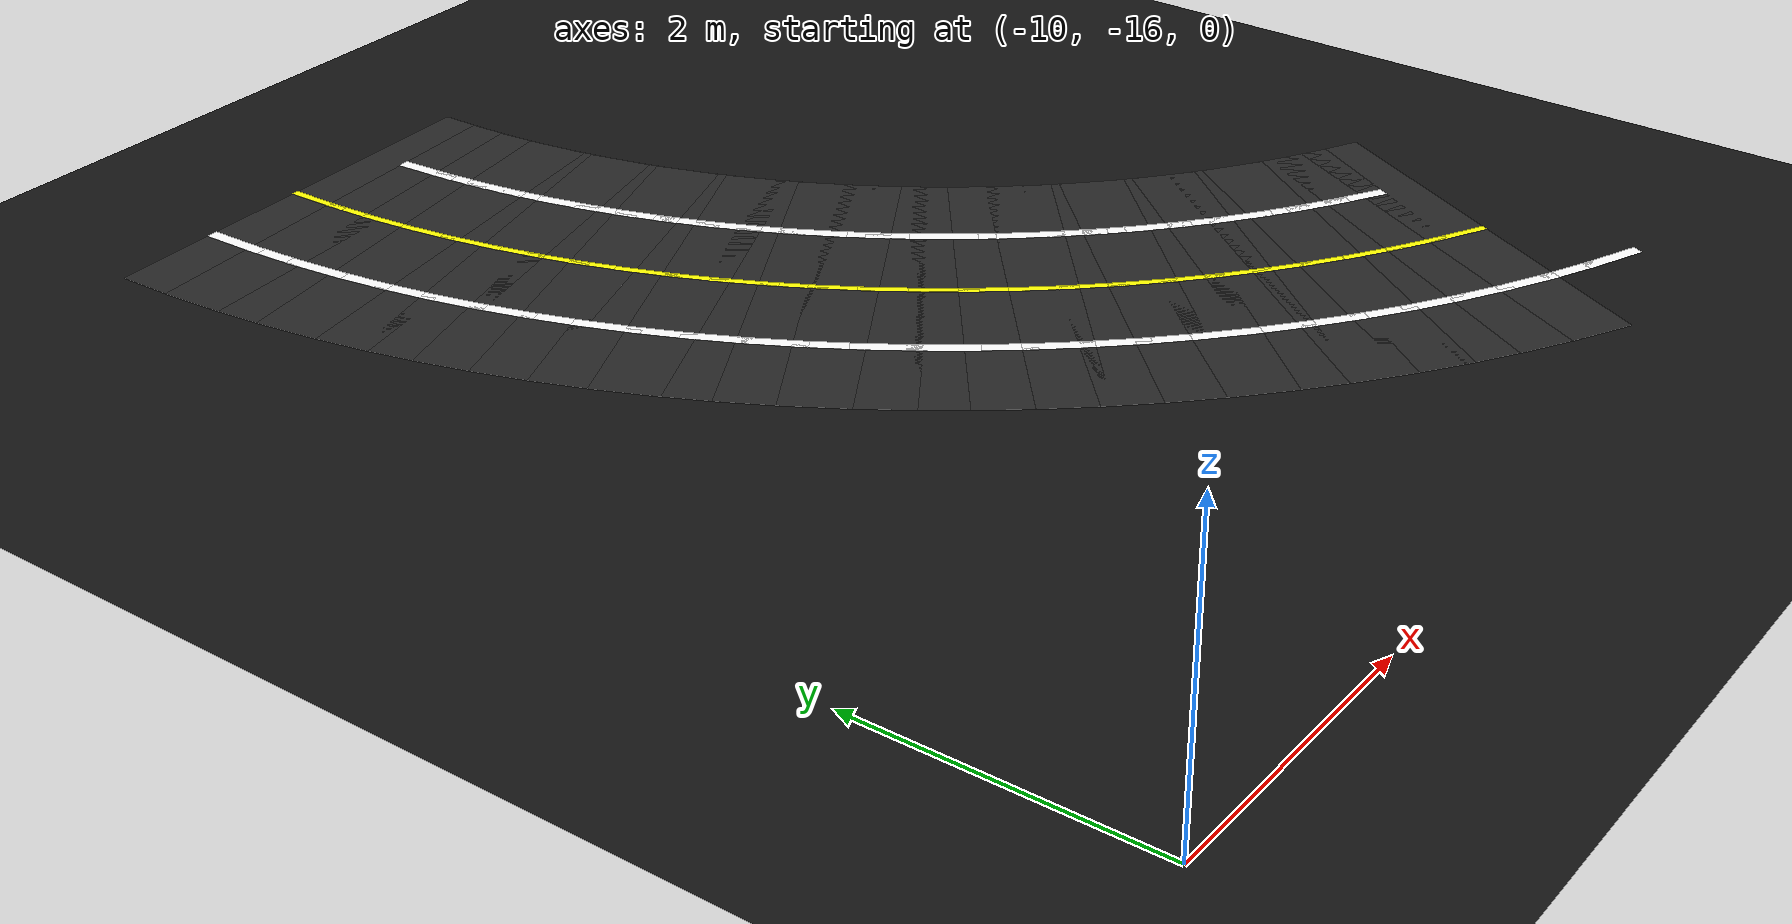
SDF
<sdf version="1.6">
 <world name="figure8_world">
  <model name="ground_plane">
   <static>true</static>
   <link name="link">
    <collision name="collision">
     <geometry><plane><normal>0 0 1</normal><size>100 100</size></plane></geometry>
    </collision>
    <visual name="visual">
     <geometry><plane><normal>0 0 1</normal><size>100 100</size></plane></geometry>
     <material><ambient>0.08 0.08 0.08 1</ambient><diffuse>0.08 0.08 0.08 1</diffuse></material>
    </visual>
   </link>
  </model>
  <model name="seg_00865">
   <static>true</static>
   <pose>-3.2173 -15.0968 0.0030 0 0 2.7410</pose>
   <link name="link">
    <collision name="collision"><geometry><box><size>0.4500 0.0800 0.002</size></box></geometry></collision>
    <visual name="visual">
     <geometry><box><size>0.4500 0.0800 0.002</size></box></geometry>
     <material><ambient>1 1 1 1</ambient><diffuse>1 1 1 1</diffuse></material>
    </visual>
   </link>
  </model>
  <model name="seg_00869">
   <static>true</static>
   <pose>-3.5347 -14.9544 0.0030 0 0 2.6988</pose>
   <link name="link">
    <collision name="collision"><geometry><box><size>0.4500 0.0800 0.002</size></box></geometry></collision>
    <visual name="visual">
     <geometry><box><size>0.4500 0.0800 0.002</size></box></geometry>
     <material><ambient>1 1 1 1</ambient><diffuse>1 1 1 1</diffuse></material>
    </visual>
   </link>
  </model>
  <model name="seg_00872">
   <static>true</static>
   <pose>-3.4962 -14.1353 0.0010 0 0 2.6566</pose>
   <link name="link">
    <collision name="collision"><geometry><box><size>0.4500 3.0000 0.002</size></box></geometry></collision>
    <visual name="visual">
     <geometry><box><size>0.4500 3.0000 0.002</size></box></geometry>
     <material><ambient>0.15 0.15 0.15 1</ambient><diffuse>0.15 0.15 0.15 1</diffuse></material>
    </visual>
   </link>
  </model>
  <model name="seg_00873">
   <static>true</static>
   <pose>-3.8458 -14.7988 0.0030 0 0 2.6566</pose>
   <link name="link">
    <collision name="collision"><geometry><box><size>0.4500 0.0800 0.002</size></box></geometry></collision>
    <visual name="visual">
     <geometry><box><size>0.4500 0.0800 0.002</size></box></geometry>
     <material><ambient>1 1 1 1</ambient><diffuse>1 1 1 1</diffuse></material>
    </visual>
   </link>
  </model>
  <model name="seg_00875">
   <static>true</static>
   <pose>-3.4962 -14.1353 0.0030 0 0 2.6566</pose>
   <link name="link">
    <collision name="collision"><geometry><box><size>0.4500 0.0500 0.002</size></box></geometry></collision>
    <visual name="visual">
     <geometry><box><size>0.4500 0.0500 0.002</size></box></geometry>
     <material><ambient>1 1 0 1</ambient><diffuse>1 1 0 1</diffuse></material>
    </visual>
   </link>
  </model>
  <model name="seg_00876">
   <static>true</static>
   <pose>-3.7728 -13.9820 0.0010 0 0 2.6145</pose>
   <link name="link">
    <collision name="collision"><geometry><box><size>0.4500 3.0000 0.002</size></box></geometry></collision>
    <visual name="visual">
     <geometry><box><size>0.4500 3.0000 0.002</size></box></geometry>
     <material><ambient>0.15 0.15 0.15 1</ambient><diffuse>0.15 0.15 0.15 1</diffuse></material>
    </visual>
   </link>
  </model>
  <model name="seg_00877">
   <static>true</static>
   <pose>-4.1501 -14.6302 0.0030 0 0 2.6145</pose>
   <link name="link">
    <collision name="collision"><geometry><box><size>0.4500 0.0800 0.002</size></box></geometry></collision>
    <visual name="visual">
     <geometry><box><size>0.4500 0.0800 0.002</size></box></geometry>
     <material><ambient>1 1 1 1</ambient><diffuse>1 1 1 1</diffuse></material>
    </visual>
   </link>
  </model>
  <model name="seg_00878">
   <static>true</static>
   <pose>-3.3955 -13.3338 0.0030 0 0 2.6145</pose>
   <link name="link">
    <collision name="collision"><geometry><box><size>0.4500 0.0800 0.002</size></box></geometry></collision>
    <visual name="visual">
     <geometry><box><size>0.4500 0.0800 0.002</size></box></geometry>
     <material><ambient>1 1 1 1</ambient><diffuse>1 1 1 1</diffuse></material>
    </visual>
   </link>
  </model>
  <model name="seg_00879">
   <static>true</static>
   <pose>-3.7728 -13.9820 0.0030 0 0 2.6145</pose>
   <link name="link">
    <collision name="collision"><geometry><box><size>0.4500 0.0500 0.002</size></box></geometry></collision>
    <visual name="visual">
     <geometry><box><size>0.4500 0.0500 0.002</size></box></geometry>
     <material><ambient>1 1 0 1</ambient><diffuse>1 1 0 1</diffuse></material>
    </visual>
   </link>
  </model>
  <model name="seg_00880">
   <static>true</static>
   <pose>-4.0427 -13.8172 0.0010 0 0 2.5723</pose>
   <link name="link">
    <collision name="collision"><geometry><box><size>0.4500 3.0000 0.002</size></box></geometry></collision>
    <visual name="visual">
     <geometry><box><size>0.4500 3.0000 0.002</size></box></geometry>
     <material><ambient>0.15 0.15 0.15 1</ambient><diffuse>0.15 0.15 0.15 1</diffuse></material>
    </visual>
   </link>
  </model>
  <model name="seg_00881">
   <static>true</static>
   <pose>-4.4470 -14.4489 0.0030 0 0 2.5723</pose>
   <link name="link">
    <collision name="collision"><geometry><box><size>0.4500 0.0800 0.002</size></box></geometry></collision>
    <visual name="visual">
     <geometry><box><size>0.4500 0.0800 0.002</size></box></geometry>
     <material><ambient>1 1 1 1</ambient><diffuse>1 1 1 1</diffuse></material>
    </visual>
   </link>
  </model>
  <model name="seg_00882">
   <static>true</static>
   <pose>-3.6384 -13.1854 0.0030 0 0 2.5723</pose>
   <link name="link">
    <collision name="collision"><geometry><box><size>0.4500 0.0800 0.002</size></box></geometry></collision>
    <visual name="visual">
     <geometry><box><size>0.4500 0.0800 0.002</size></box></geometry>
     <material><ambient>1 1 1 1</ambient><diffuse>1 1 1 1</diffuse></material>
    </visual>
   </link>
  </model>
  <model name="seg_00883">
   <static>true</static>
   <pose>-4.0427 -13.8172 0.0030 0 0 2.5723</pose>
   <link name="link">
    <collision name="collision"><geometry><box><size>0.4500 0.0500 0.002</size></box></geometry></collision>
    <visual name="visual">
     <geometry><box><size>0.4500 0.0500 0.002</size></box></geometry>
     <material><ambient>1 1 0 1</ambient><diffuse>1 1 0 1</diffuse></material>
    </visual>
   </link>
  </model>
  <model name="seg_00884">
   <static>true</static>
   <pose>-4.3054 -13.6411 0.0010 0 0 2.5301</pose>
   <link name="link">
    <collision name="collision"><geometry><box><size>0.4500 3.0000 0.002</size></box></geometry></collision>
    <visual name="visual">
     <geometry><box><size>0.4500 3.0000 0.002</size></box></geometry>
     <material><ambient>0.15 0.15 0.15 1</ambient><diffuse>0.15 0.15 0.15 1</diffuse></material>
    </visual>
   </link>
  </model>
  <model name="seg_00885">
   <static>true</static>
   <pose>-4.7360 -14.2552 0.0030 0 0 2.5301</pose>
   <link name="link">
    <collision name="collision"><geometry><box><size>0.4500 0.0800 0.002</size></box></geometry></collision>
    <visual name="visual">
     <geometry><box><size>0.4500 0.0800 0.002</size></box></geometry>
     <material><ambient>1 1 1 1</ambient><diffuse>1 1 1 1</diffuse></material>
    </visual>
   </link>
  </model>
  <model name="seg_00886">
   <static>true</static>
   <pose>-3.8749 -13.0270 0.0030 0 0 2.5301</pose>
   <link name="link">
    <collision name="collision"><geometry><box><size>0.4500 0.0800 0.002</size></box></geometry></collision>
    <visual name="visual">
     <geometry><box><size>0.4500 0.0800 0.002</size></box></geometry>
     <material><ambient>1 1 1 1</ambient><diffuse>1 1 1 1</diffuse></material>
    </visual>
   </link>
  </model>
  <model name="seg_00887">
   <static>true</static>
   <pose>-4.3054 -13.6411 0.0030 0 0 2.5301</pose>
   <link name="link">
    <collision name="collision"><geometry><box><size>0.4500 0.0500 0.002</size></box></geometry></collision>
    <visual name="visual">
     <geometry><box><size>0.4500 0.0500 0.002</size></box></geometry>
     <material><ambient>1 1 0 1</ambient><diffuse>1 1 0 1</diffuse></material>
    </visual>
   </link>
  </model>
  <model name="seg_00888">
   <static>true</static>
   <pose>-4.5605 -13.4542 0.0010 0 0 2.4880</pose>
   <link name="link">
    <collision name="collision"><geometry><box><size>0.4500 3.0000 0.002</size></box></geometry></collision>
    <visual name="visual">
     <geometry><box><size>0.4500 3.0000 0.002</size></box></geometry>
     <material><ambient>0.15 0.15 0.15 1</ambient><diffuse>0.15 0.15 0.15 1</diffuse></material>
    </visual>
   </link>
  </model>
  <model name="seg_00889">
   <static>true</static>
   <pose>-5.0165 -14.0496 0.0030 0 0 2.4880</pose>
   <link name="link">
    <collision name="collision"><geometry><box><size>0.4500 0.0800 0.002</size></box></geometry></collision>
    <visual name="visual">
     <geometry><box><size>0.4500 0.0800 0.002</size></box></geometry>
     <material><ambient>1 1 1 1</ambient><diffuse>1 1 1 1</diffuse></material>
    </visual>
   </link>
  </model>
  <model name="seg_00890">
   <static>true</static>
   <pose>-4.1044 -12.8587 0.0030 0 0 2.4880</pose>
   <link name="link">
    <collision name="collision"><geometry><box><size>0.4500 0.0800 0.002</size></box></geometry></collision>
    <visual name="visual">
     <geometry><box><size>0.4500 0.0800 0.002</size></box></geometry>
     <material><ambient>1 1 1 1</ambient><diffuse>1 1 1 1</diffuse></material>
    </visual>
   </link>
  </model>
  <model name="seg_00891">
   <static>true</static>
   <pose>-4.5605 -13.4542 0.0030 0 0 2.4880</pose>
   <link name="link">
    <collision name="collision"><geometry><box><size>0.4500 0.0500 0.002</size></box></geometry></collision>
    <visual name="visual">
     <geometry><box><size>0.4500 0.0500 0.002</size></box></geometry>
     <material><ambient>1 1 0 1</ambient><diffuse>1 1 0 1</diffuse></material>
    </visual>
   </link>
  </model>
  <model name="seg_00892">
   <static>true</static>
   <pose>-4.8074 -13.2566 0.0010 0 0 2.4458</pose>
   <link name="link">
    <collision name="collision"><geometry><box><size>0.4500 3.0000 0.002</size></box></geometry></collision>
    <visual name="visual">
     <geometry><box><size>0.4500 3.0000 0.002</size></box></geometry>
     <material><ambient>0.15 0.15 0.15 1</ambient><diffuse>0.15 0.15 0.15 1</diffuse></material>
    </visual>
   </link>
  </model>
  <model name="seg_00893">
   <static>true</static>
   <pose>-5.2882 -13.8323 0.0030 0 0 2.4458</pose>
   <link name="link">
    <collision name="collision"><geometry><box><size>0.4500 0.0800 0.002</size></box></geometry></collision>
    <visual name="visual">
     <geometry><box><size>0.4500 0.0800 0.002</size></box></geometry>
     <material><ambient>1 1 1 1</ambient><diffuse>1 1 1 1</diffuse></material>
    </visual>
   </link>
  </model>
  <model name="seg_00894">
   <static>true</static>
   <pose>-4.3267 -12.6810 0.0030 0 0 2.4458</pose>
   <link name="link">
    <collision name="collision"><geometry><box><size>0.4500 0.0800 0.002</size></box></geometry></collision>
    <visual name="visual">
     <geometry><box><size>0.4500 0.0800 0.002</size></box></geometry>
     <material><ambient>1 1 1 1</ambient><diffuse>1 1 1 1</diffuse></material>
    </visual>
   </link>
  </model>
  <model name="seg_00895">
   <static>true</static>
   <pose>-4.8074 -13.2566 0.0030 0 0 2.4458</pose>
   <link name="link">
    <collision name="collision"><geometry><box><size>0.4500 0.0500 0.002</size></box></geometry></collision>
    <visual name="visual">
     <geometry><box><size>0.4500 0.0500 0.002</size></box></geometry>
     <material><ambient>1 1 0 1</ambient><diffuse>1 1 0 1</diffuse></material>
    </visual>
   </link>
  </model>
  <model name="seg_00896">
   <static>true</static>
   <pose>-5.0458 -13.0488 0.0010 0 0 2.4036</pose>
   <link name="link">
    <collision name="collision"><geometry><box><size>0.4500 3.0000 0.002</size></box></geometry></collision>
    <visual name="visual">
     <geometry><box><size>0.4500 3.0000 0.002</size></box></geometry>
     <material><ambient>0.15 0.15 0.15 1</ambient><diffuse>0.15 0.15 0.15 1</diffuse></material>
    </visual>
   </link>
  </model>
  <model name="seg_00897">
   <static>true</static>
   <pose>-5.5504 -13.6037 0.0030 0 0 2.4036</pose>
   <link name="link">
    <collision name="collision"><geometry><box><size>0.4500 0.0800 0.002</size></box></geometry></collision>
    <visual name="visual">
     <geometry><box><size>0.4500 0.0800 0.002</size></box></geometry>
     <material><ambient>1 1 1 1</ambient><diffuse>1 1 1 1</diffuse></material>
    </visual>
   </link>
  </model>
  <model name="seg_00898">
   <static>true</static>
   <pose>-4.5413 -12.4939 0.0030 0 0 2.4036</pose>
   <link name="link">
    <collision name="collision"><geometry><box><size>0.4500 0.0800 0.002</size></box></geometry></collision>
    <visual name="visual">
     <geometry><box><size>0.4500 0.0800 0.002</size></box></geometry>
     <material><ambient>1 1 1 1</ambient><diffuse>1 1 1 1</diffuse></material>
    </visual>
   </link>
  </model>
  <model name="seg_00899">
   <static>true</static>
   <pose>-5.0458 -13.0488 0.0030 0 0 2.4036</pose>
   <link name="link">
    <collision name="collision"><geometry><box><size>0.4500 0.0500 0.002</size></box></geometry></collision>
    <visual name="visual">
     <geometry><box><size>0.4500 0.0500 0.002</size></box></geometry>
     <material><ambient>1 1 0 1</ambient><diffuse>1 1 0 1</diffuse></material>
    </visual>
   </link>
  </model>
  <model name="seg_00900">
   <static>true</static>
   <pose>-5.2753 -12.8312 0.0010 0 0 2.3615</pose>
   <link name="link">
    <collision name="collision"><geometry><box><size>0.4500 3.0000 0.002</size></box></geometry></collision>
    <visual name="visual">
     <geometry><box><size>0.4500 3.0000 0.002</size></box></geometry>
     <material><ambient>0.15 0.15 0.15 1</ambient><diffuse>0.15 0.15 0.15 1</diffuse></material>
    </visual>
   </link>
  </model>
  <model name="seg_00901">
   <static>true</static>
   <pose>-5.8028 -13.3643 0.0030 0 0 2.3615</pose>
   <link name="link">
    <collision name="collision"><geometry><box><size>0.4500 0.0800 0.002</size></box></geometry></collision>
    <visual name="visual">
     <geometry><box><size>0.4500 0.0800 0.002</size></box></geometry>
     <material><ambient>1 1 1 1</ambient><diffuse>1 1 1 1</diffuse></material>
    </visual>
   </link>
  </model>
  <model name="seg_00902">
   <static>true</static>
   <pose>-4.7477 -12.2981 0.0030 0 0 2.3615</pose>
   <link name="link">
    <collision name="collision"><geometry><box><size>0.4500 0.0800 0.002</size></box></geometry></collision>
    <visual name="visual">
     <geometry><box><size>0.4500 0.0800 0.002</size></box></geometry>
     <material><ambient>1 1 1 1</ambient><diffuse>1 1 1 1</diffuse></material>
    </visual>
   </link>
  </model>
  <model name="seg_00903">
   <static>true</static>
   <pose>-5.2753 -12.8312 0.0030 0 0 2.3615</pose>
   <link name="link">
    <collision name="collision"><geometry><box><size>0.4500 0.0500 0.002</size></box></geometry></collision>
    <visual name="visual">
     <geometry><box><size>0.4500 0.0500 0.002</size></box></geometry>
     <material><ambient>1 1 0 1</ambient><diffuse>1 1 0 1</diffuse></material>
    </visual>
   </link>
  </model>
  <model name="seg_00904">
   <static>true</static>
   <pose>-5.4953 -12.6041 0.0010 0 0 2.3193</pose>
   <link name="link">
    <collision name="collision"><geometry><box><size>0.4500 3.0000 0.002</size></box></geometry></collision>
    <visual name="visual">
     <geometry><box><size>0.4500 3.0000 0.002</size></box></geometry>
     <material><ambient>0.15 0.15 0.15 1</ambient><diffuse>0.15 0.15 0.15 1</diffuse></material>
    </visual>
   </link>
  </model>
  <model name="seg_00905">
   <static>true</static>
   <pose>-6.0449 -13.1145 0.0030 0 0 2.3193</pose>
   <link name="link">
    <collision name="collision"><geometry><box><size>0.4500 0.0800 0.002</size></box></geometry></collision>
    <visual name="visual">
     <geometry><box><size>0.4500 0.0800 0.002</size></box></geometry>
     <material><ambient>1 1 1 1</ambient><diffuse>1 1 1 1</diffuse></material>
    </visual>
   </link>
  </model>
  <model name="seg_00906">
   <static>true</static>
   <pose>-4.9458 -12.0936 0.0030 0 0 2.3193</pose>
   <link name="link">
    <collision name="collision"><geometry><box><size>0.4500 0.0800 0.002</size></box></geometry></collision>
    <visual name="visual">
     <geometry><box><size>0.4500 0.0800 0.002</size></box></geometry>
     <material><ambient>1 1 1 1</ambient><diffuse>1 1 1 1</diffuse></material>
    </visual>
   </link>
  </model>
  <model name="seg_00907">
   <static>true</static>
   <pose>-5.4953 -12.6041 0.0030 0 0 2.3193</pose>
   <link name="link">
    <collision name="collision"><geometry><box><size>0.4500 0.0500 0.002</size></box></geometry></collision>
    <visual name="visual">
     <geometry><box><size>0.4500 0.0500 0.002</size></box></geometry>
     <material><ambient>1 1 0 1</ambient><diffuse>1 1 0 1</diffuse></material>
    </visual>
   </link>
  </model>
  <model name="seg_00908">
   <static>true</static>
   <pose>-5.7056 -12.3679 0.0010 0 0 2.2771</pose>
   <link name="link">
    <collision name="collision"><geometry><box><size>0.4500 3.0000 0.002</size></box></geometry></collision>
    <visual name="visual">
     <geometry><box><size>0.4500 3.0000 0.002</size></box></geometry>
     <material><ambient>0.15 0.15 0.15 1</ambient><diffuse>0.15 0.15 0.15 1</diffuse></material>
    </visual>
   </link>
  </model>
  <model name="seg_00909">
   <static>true</static>
   <pose>-6.2762 -12.8546 0.0030 0 0 2.2771</pose>
   <link name="link">
    <collision name="collision"><geometry><box><size>0.4500 0.0800 0.002</size></box></geometry></collision>
    <visual name="visual">
     <geometry><box><size>0.4500 0.0800 0.002</size></box></geometry>
     <material><ambient>1 1 1 1</ambient><diffuse>1 1 1 1</diffuse></material>
    </visual>
   </link>
  </model>
  <model name="seg_00910">
   <static>true</static>
   <pose>-5.1351 -11.8811 0.0030 0 0 2.2771</pose>
   <link name="link">
    <collision name="collision"><geometry><box><size>0.4500 0.0800 0.002</size></box></geometry></collision>
    <visual name="visual">
     <geometry><box><size>0.4500 0.0800 0.002</size></box></geometry>
     <material><ambient>1 1 1 1</ambient><diffuse>1 1 1 1</diffuse></material>
    </visual>
   </link>
  </model>
  <model name="seg_00911">
   <static>true</static>
   <pose>-5.7056 -12.3679 0.0030 0 0 2.2771</pose>
   <link name="link">
    <collision name="collision"><geometry><box><size>0.4500 0.0500 0.002</size></box></geometry></collision>
    <visual name="visual">
     <geometry><box><size>0.4500 0.0500 0.002</size></box></geometry>
     <material><ambient>1 1 0 1</ambient><diffuse>1 1 0 1</diffuse></material>
    </visual>
   </link>
  </model>
  <model name="seg_00912">
   <static>true</static>
   <pose>-5.9058 -12.1230 0.0010 0 0 2.2350</pose>
   <link name="link">
    <collision name="collision"><geometry><box><size>0.4500 3.0000 0.002</size></box></geometry></collision>
    <visual name="visual">
     <geometry><box><size>0.4500 3.0000 0.002</size></box></geometry>
     <material><ambient>0.15 0.15 0.15 1</ambient><diffuse>0.15 0.15 0.15 1</diffuse></material>
    </visual>
   </link>
  </model>
  <model name="seg_00913">
   <static>true</static>
   <pose>-6.4963 -12.5853 0.0030 0 0 2.2350</pose>
   <link name="link">
    <collision name="collision"><geometry><box><size>0.4500 0.0800 0.002</size></box></geometry></collision>
    <visual name="visual">
     <geometry><box><size>0.4500 0.0800 0.002</size></box></geometry>
     <material><ambient>1 1 1 1</ambient><diffuse>1 1 1 1</diffuse></material>
    </visual>
   </link>
  </model>
  <model name="seg_00914">
   <static>true</static>
   <pose>-5.3152 -11.6607 0.0030 0 0 2.2350</pose>
   <link name="link">
    <collision name="collision"><geometry><box><size>0.4500 0.0800 0.002</size></box></geometry></collision>
    <visual name="visual">
     <geometry><box><size>0.4500 0.0800 0.002</size></box></geometry>
     <material><ambient>1 1 1 1</ambient><diffuse>1 1 1 1</diffuse></material>
    </visual>
   </link>
  </model>
  <model name="seg_00915">
   <static>true</static>
   <pose>-5.9058 -12.1230 0.0030 0 0 2.2350</pose>
   <link name="link">
    <collision name="collision"><geometry><box><size>0.4500 0.0500 0.002</size></box></geometry></collision>
    <visual name="visual">
     <geometry><box><size>0.4500 0.0500 0.002</size></box></geometry>
     <material><ambient>1 1 0 1</ambient><diffuse>1 1 0 1</diffuse></material>
    </visual>
   </link>
  </model>
  <model name="seg_00916">
   <static>true</static>
   <pose>-6.0954 -11.8699 0.0010 0 0 2.1928</pose>
   <link name="link">
    <collision name="collision"><geometry><box><size>0.4500 3.0000 0.002</size></box></geometry></collision>
    <visual name="visual">
     <geometry><box><size>0.4500 3.0000 0.002</size></box></geometry>
     <material><ambient>0.15 0.15 0.15 1</ambient><diffuse>0.15 0.15 0.15 1</diffuse></material>
    </visual>
   </link>
  </model>
  <model name="seg_00917">
   <static>true</static>
   <pose>-6.7049 -12.3069 0.0030 0 0 2.1928</pose>
   <link name="link">
    <collision name="collision"><geometry><box><size>0.4500 0.0800 0.002</size></box></geometry></collision>
    <visual name="visual">
     <geometry><box><size>0.4500 0.0800 0.002</size></box></geometry>
     <material><ambient>1 1 1 1</ambient><diffuse>1 1 1 1</diffuse></material>
    </visual>
   </link>
  </model>
  <model name="seg_00918">
   <static>true</static>
   <pose>-5.4859 -11.4329 0.0030 0 0 2.1928</pose>
   <link name="link">
    <collision name="collision"><geometry><box><size>0.4500 0.0800 0.002</size></box></geometry></collision>
    <visual name="visual">
     <geometry><box><size>0.4500 0.0800 0.002</size></box></geometry>
     <material><ambient>1 1 1 1</ambient><diffuse>1 1 1 1</diffuse></material>
    </visual>
   </link>
  </model>
  <model name="seg_00919">
   <static>true</static>
   <pose>-6.0954 -11.8699 0.0030 0 0 2.1928</pose>
   <link name="link">
    <collision name="collision"><geometry><box><size>0.4500 0.0500 0.002</size></box></geometry></collision>
    <visual name="visual">
     <geometry><box><size>0.4500 0.0500 0.002</size></box></geometry>
     <material><ambient>1 1 0 1</ambient><diffuse>1 1 0 1</diffuse></material>
    </visual>
   </link>
  </model>
  <model name="seg_00920">
   <static>true</static>
   <pose>-6.2742 -11.6091 0.0010 0 0 2.1506</pose>
   <link name="link">
    <collision name="collision"><geometry><box><size>0.4500 3.0000 0.002</size></box></geometry></collision>
    <visual name="visual">
     <geometry><box><size>0.4500 3.0000 0.002</size></box></geometry>
     <material><ambient>0.15 0.15 0.15 1</ambient><diffuse>0.15 0.15 0.15 1</diffuse></material>
    </visual>
   </link>
  </model>
  <model name="seg_00921">
   <static>true</static>
   <pose>-6.9016 -12.0200 0.0030 0 0 2.1506</pose>
   <link name="link">
    <collision name="collision"><geometry><box><size>0.4500 0.0800 0.002</size></box></geometry></collision>
    <visual name="visual">
     <geometry><box><size>0.4500 0.0800 0.002</size></box></geometry>
     <material><ambient>1 1 1 1</ambient><diffuse>1 1 1 1</diffuse></material>
    </visual>
   </link>
  </model>
  <model name="seg_00922">
   <static>true</static>
   <pose>-5.6468 -11.1982 0.0030 0 0 2.1506</pose>
   <link name="link">
    <collision name="collision"><geometry><box><size>0.4500 0.0800 0.002</size></box></geometry></collision>
    <visual name="visual">
     <geometry><box><size>0.4500 0.0800 0.002</size></box></geometry>
     <material><ambient>1 1 1 1</ambient><diffuse>1 1 1 1</diffuse></material>
    </visual>
   </link>
  </model>
  <model name="seg_00923">
   <static>true</static>
   <pose>-6.2742 -11.6091 0.0030 0 0 2.1506</pose>
   <link name="link">
    <collision name="collision"><geometry><box><size>0.4500 0.0500 0.002</size></box></geometry></collision>
    <visual name="visual">
     <geometry><box><size>0.4500 0.0500 0.002</size></box></geometry>
     <material><ambient>1 1 0 1</ambient><diffuse>1 1 0 1</diffuse></material>
    </visual>
   </link>
  </model>
  <model name="seg_00924">
   <static>true</static>
   <pose>-6.4418 -11.3409 0.0010 0 0 2.1085</pose>
   <link name="link">
    <collision name="collision"><geometry><box><size>0.4500 3.0000 0.002</size></box></geometry></collision>
    <visual name="visual">
     <geometry><box><size>0.4500 3.0000 0.002</size></box></geometry>
     <material><ambient>0.15 0.15 0.15 1</ambient><diffuse>0.15 0.15 0.15 1</diffuse></material>
    </visual>
   </link>
  </model>
  <model name="seg_00925">
   <static>true</static>
   <pose>-7.0860 -11.7250 0.0030 0 0 2.1085</pose>
   <link name="link">
    <collision name="collision"><geometry><box><size>0.4500 0.0800 0.002</size></box></geometry></collision>
    <visual name="visual">
     <geometry><box><size>0.4500 0.0800 0.002</size></box></geometry>
     <material><ambient>1 1 1 1</ambient><diffuse>1 1 1 1</diffuse></material>
    </visual>
   </link>
  </model>
  <model name="seg_00926">
   <static>true</static>
   <pose>-5.7977 -10.9568 0.0030 0 0 2.1085</pose>
   <link name="link">
    <collision name="collision"><geometry><box><size>0.4500 0.0800 0.002</size></box></geometry></collision>
    <visual name="visual">
     <geometry><box><size>0.4500 0.0800 0.002</size></box></geometry>
     <material><ambient>1 1 1 1</ambient><diffuse>1 1 1 1</diffuse></material>
    </visual>
   </link>
  </model>
  <model name="seg_00927">
   <static>true</static>
   <pose>-6.4418 -11.3409 0.0030 0 0 2.1085</pose>
   <link name="link">
    <collision name="collision"><geometry><box><size>0.4500 0.0500 0.002</size></box></geometry></collision>
    <visual name="visual">
     <geometry><box><size>0.4500 0.0500 0.002</size></box></geometry>
     <material><ambient>1 1 0 1</ambient><diffuse>1 1 0 1</diffuse></material>
    </visual>
   </link>
  </model>
  <model name="seg_00928">
   <static>true</static>
   <pose>-6.5980 -11.0659 0.0010 0 0 2.0663</pose>
   <link name="link">
    <collision name="collision"><geometry><box><size>0.4500 3.0000 0.002</size></box></geometry></collision>
    <visual name="visual">
     <geometry><box><size>0.4500 3.0000 0.002</size></box></geometry>
     <material><ambient>0.15 0.15 0.15 1</ambient><diffuse>0.15 0.15 0.15 1</diffuse></material>
    </visual>
   </link>
  </model>
  <model name="seg_00929">
   <static>true</static>
   <pose>-7.2578 -11.4225 0.0030 0 0 2.0663</pose>
   <link name="link">
    <collision name="collision"><geometry><box><size>0.4500 0.0800 0.002</size></box></geometry></collision>
    <visual name="visual">
     <geometry><box><size>0.4500 0.0800 0.002</size></box></geometry>
     <material><ambient>1 1 1 1</ambient><diffuse>1 1 1 1</diffuse></material>
    </visual>
   </link>
  </model>
  <model name="seg_00930">
   <static>true</static>
   <pose>-5.9382 -10.7094 0.0030 0 0 2.0663</pose>
   <link name="link">
    <collision name="collision"><geometry><box><size>0.4500 0.0800 0.002</size></box></geometry></collision>
    <visual name="visual">
     <geometry><box><size>0.4500 0.0800 0.002</size></box></geometry>
     <material><ambient>1 1 1 1</ambient><diffuse>1 1 1 1</diffuse></material>
    </visual>
   </link>
  </model>
  <model name="seg_00931">
   <static>true</static>
   <pose>-6.5980 -11.0659 0.0030 0 0 2.0663</pose>
   <link name="link">
    <collision name="collision"><geometry><box><size>0.4500 0.0500 0.002</size></box></geometry></collision>
    <visual name="visual">
     <geometry><box><size>0.4500 0.0500 0.002</size></box></geometry>
     <material><ambient>1 1 0 1</ambient><diffuse>1 1 0 1</diffuse></material>
    </visual>
   </link>
  </model>
  <model name="seg_00932">
   <static>true</static>
   <pose>-6.7425 -10.7846 0.0010 0 0 2.0241</pose>
   <link name="link">
    <collision name="collision"><geometry><box><size>0.4500 3.0000 0.002</size></box></geometry></collision>
    <visual name="visual">
     <geometry><box><size>0.4500 3.0000 0.002</size></box></geometry>
     <material><ambient>0.15 0.15 0.15 1</ambient><diffuse>0.15 0.15 0.15 1</diffuse></material>
    </visual>
   </link>
  </model>
  <model name="seg_00933">
   <static>true</static>
   <pose>-7.4167 -11.1131 0.0030 0 0 2.0241</pose>
   <link name="link">
    <collision name="collision"><geometry><box><size>0.4500 0.0800 0.002</size></box></geometry></collision>
    <visual name="visual">
     <geometry><box><size>0.4500 0.0800 0.002</size></box></geometry>
     <material><ambient>1 1 1 1</ambient><diffuse>1 1 1 1</diffuse></material>
    </visual>
   </link>
  </model>
  <model name="seg_00934">
   <static>true</static>
   <pose>-6.0682 -10.4562 0.0030 0 0 2.0241</pose>
   <link name="link">
    <collision name="collision"><geometry><box><size>0.4500 0.0800 0.002</size></box></geometry></collision>
    <visual name="visual">
     <geometry><box><size>0.4500 0.0800 0.002</size></box></geometry>
     <material><ambient>1 1 1 1</ambient><diffuse>1 1 1 1</diffuse></material>
    </visual>
   </link>
  </model>
  <model name="seg_00935">
   <static>true</static>
   <pose>-6.7425 -10.7846 0.0030 0 0 2.0241</pose>
   <link name="link">
    <collision name="collision"><geometry><box><size>0.4500 0.0500 0.002</size></box></geometry></collision>
    <visual name="visual">
     <geometry><box><size>0.4500 0.0500 0.002</size></box></geometry>
     <material><ambient>1 1 0 1</ambient><diffuse>1 1 0 1</diffuse></material>
    </visual>
   </link>
  </model>
  <model name="seg_00936">
   <static>true</static>
   <pose>-6.8750 -10.4975 0.0010 0 0 1.9819</pose>
   <link name="link">
    <collision name="collision"><geometry><box><size>0.4500 3.0000 0.002</size></box></geometry></collision>
    <visual name="visual">
     <geometry><box><size>0.4500 3.0000 0.002</size></box></geometry>
     <material><ambient>0.15 0.15 0.15 1</ambient><diffuse>0.15 0.15 0.15 1</diffuse></material>
    </visual>
   </link>
  </model>
  <model name="seg_00937">
   <static>true</static>
   <pose>-7.5625 -10.7972 0.0030 0 0 1.9819</pose>
   <link name="link">
    <collision name="collision"><geometry><box><size>0.4500 0.0800 0.002</size></box></geometry></collision>
    <visual name="visual">
     <geometry><box><size>0.4500 0.0800 0.002</size></box></geometry>
     <material><ambient>1 1 1 1</ambient><diffuse>1 1 1 1</diffuse></material>
    </visual>
   </link>
  </model>
  <model name="seg_00938">
   <static>true</static>
   <pose>-6.1875 -10.1977 0.0030 0 0 1.9819</pose>
   <link name="link">
    <collision name="collision"><geometry><box><size>0.4500 0.0800 0.002</size></box></geometry></collision>
    <visual name="visual">
     <geometry><box><size>0.4500 0.0800 0.002</size></box></geometry>
     <material><ambient>1 1 1 1</ambient><diffuse>1 1 1 1</diffuse></material>
    </visual>
   </link>
  </model>
  <model name="seg_00939">
   <static>true</static>
   <pose>-6.8750 -10.4975 0.0030 0 0 1.9819</pose>
   <link name="link">
    <collision name="collision"><geometry><box><size>0.4500 0.0500 0.002</size></box></geometry></collision>
    <visual name="visual">
     <geometry><box><size>0.4500 0.0500 0.002</size></box></geometry>
     <material><ambient>1 1 0 1</ambient><diffuse>1 1 0 1</diffuse></material>
    </visual>
   </link>
  </model>
  <model name="seg_00940">
   <static>true</static>
   <pose>-6.9952 -10.2050 0.0010 0 0 1.9398</pose>
   <link name="link">
    <collision name="collision"><geometry><box><size>0.4500 3.0000 0.002</size></box></geometry></collision>
    <visual name="visual">
     <geometry><box><size>0.4500 3.0000 0.002</size></box></geometry>
     <material><ambient>0.15 0.15 0.15 1</ambient><diffuse>0.15 0.15 0.15 1</diffuse></material>
    </visual>
   </link>
  </model>
  <model name="seg_00941">
   <static>true</static>
   <pose>-7.6947 -10.4755 0.0030 0 0 1.9398</pose>
   <link name="link">
    <collision name="collision"><geometry><box><size>0.4500 0.0800 0.002</size></box></geometry></collision>
    <visual name="visual">
     <geometry><box><size>0.4500 0.0800 0.002</size></box></geometry>
     <material><ambient>1 1 1 1</ambient><diffuse>1 1 1 1</diffuse></material>
    </visual>
   </link>
  </model>
  <model name="seg_00942">
   <static>true</static>
   <pose>-6.2957 -9.9345 0.0030 0 0 1.9398</pose>
   <link name="link">
    <collision name="collision"><geometry><box><size>0.4500 0.0800 0.002</size></box></geometry></collision>
    <visual name="visual">
     <geometry><box><size>0.4500 0.0800 0.002</size></box></geometry>
     <material><ambient>1 1 1 1</ambient><diffuse>1 1 1 1</diffuse></material>
    </visual>
   </link>
  </model>
  <model name="seg_00943">
   <static>true</static>
   <pose>-6.9952 -10.2050 0.0030 0 0 1.9398</pose>
   <link name="link">
    <collision name="collision"><geometry><box><size>0.4500 0.0500 0.002</size></box></geometry></collision>
    <visual name="visual">
     <geometry><box><size>0.4500 0.0500 0.002</size></box></geometry>
     <material><ambient>1 1 0 1</ambient><diffuse>1 1 0 1</diffuse></material>
    </visual>
   </link>
  </model>
  <model name="seg_00944">
   <static>true</static>
   <pose>-7.1030 -9.9077 0.0010 0 0 1.8976</pose>
   <link name="link">
    <collision name="collision"><geometry><box><size>0.4500 3.0000 0.002</size></box></geometry></collision>
    <visual name="visual">
     <geometry><box><size>0.4500 3.0000 0.002</size></box></geometry>
     <material><ambient>0.15 0.15 0.15 1</ambient><diffuse>0.15 0.15 0.15 1</diffuse></material>
    </visual>
   </link>
  </model>
  <model name="seg_00945">
   <static>true</static>
   <pose>-7.8133 -10.1484 0.0030 0 0 1.8976</pose>
   <link name="link">
    <collision name="collision"><geometry><box><size>0.4500 0.0800 0.002</size></box></geometry></collision>
    <visual name="visual">
     <geometry><box><size>0.4500 0.0800 0.002</size></box></geometry>
     <material><ambient>1 1 1 1</ambient><diffuse>1 1 1 1</diffuse></material>
    </visual>
   </link>
  </model>
  <model name="seg_00946">
   <static>true</static>
   <pose>-6.3927 -9.6669 0.0030 0 0 1.8976</pose>
   <link name="link">
    <collision name="collision"><geometry><box><size>0.4500 0.0800 0.002</size></box></geometry></collision>
    <visual name="visual">
     <geometry><box><size>0.4500 0.0800 0.002</size></box></geometry>
     <material><ambient>1 1 1 1</ambient><diffuse>1 1 1 1</diffuse></material>
    </visual>
   </link>
  </model>
  <model name="seg_00947">
   <static>true</static>
   <pose>-7.1030 -9.9077 0.0030 0 0 1.8976</pose>
   <link name="link">
    <collision name="collision"><geometry><box><size>0.4500 0.0500 0.002</size></box></geometry></collision>
    <visual name="visual">
     <geometry><box><size>0.4500 0.0500 0.002</size></box></geometry>
     <material><ambient>1 1 0 1</ambient><diffuse>1 1 0 1</diffuse></material>
    </visual>
   </link>
  </model>
  <model name="seg_00948">
   <static>true</static>
   <pose>-7.1982 -9.6061 0.0010 0 0 1.8554</pose>
   <link name="link">
    <collision name="collision"><geometry><box><size>0.4500 3.0000 0.002</size></box></geometry></collision>
    <visual name="visual">
     <geometry><box><size>0.4500 3.0000 0.002</size></box></geometry>
     <material><ambient>0.15 0.15 0.15 1</ambient><diffuse>0.15 0.15 0.15 1</diffuse></material>
    </visual>
   </link>
  </model>
  <model name="seg_00949">
   <static>true</static>
   <pose>-7.9180 -9.8167 0.0030 0 0 1.8554</pose>
   <link name="link">
    <collision name="collision"><geometry><box><size>0.4500 0.0800 0.002</size></box></geometry></collision>
    <visual name="visual">
     <geometry><box><size>0.4500 0.0800 0.002</size></box></geometry>
     <material><ambient>1 1 1 1</ambient><diffuse>1 1 1 1</diffuse></material>
    </visual>
   </link>
  </model>
  <model name="seg_00950">
   <static>true</static>
   <pose>-6.4784 -9.3955 0.0030 0 0 1.8554</pose>
   <link name="link">
    <collision name="collision"><geometry><box><size>0.4500 0.0800 0.002</size></box></geometry></collision>
    <visual name="visual">
     <geometry><box><size>0.4500 0.0800 0.002</size></box></geometry>
     <material><ambient>1 1 1 1</ambient><diffuse>1 1 1 1</diffuse></material>
    </visual>
   </link>
  </model>
  <model name="seg_00951">
   <static>true</static>
   <pose>-7.1982 -9.6061 0.0030 0 0 1.8554</pose>
   <link name="link">
    <collision name="collision"><geometry><box><size>0.4500 0.0500 0.002</size></box></geometry></collision>
    <visual name="visual">
     <geometry><box><size>0.4500 0.0500 0.002</size></box></geometry>
     <material><ambient>1 1 0 1</ambient><diffuse>1 1 0 1</diffuse></material>
    </visual>
   </link>
  </model>
  <model name="seg_00952">
   <static>true</static>
   <pose>-7.2806 -9.3008 0.0010 0 0 1.8133</pose>
   <link name="link">
    <collision name="collision"><geometry><box><size>0.4500 3.0000 0.002</size></box></geometry></collision>
    <visual name="visual">
     <geometry><box><size>0.4500 3.0000 0.002</size></box></geometry>
     <material><ambient>0.15 0.15 0.15 1</ambient><diffuse>0.15 0.15 0.15 1</diffuse></material>
    </visual>
   </link>
  </model>
  <model name="seg_00953">
   <static>true</static>
   <pose>-8.0087 -9.4808 0.0030 0 0 1.8133</pose>
   <link name="link">
    <collision name="collision"><geometry><box><size>0.4500 0.0800 0.002</size></box></geometry></collision>
    <visual name="visual">
     <geometry><box><size>0.4500 0.0800 0.002</size></box></geometry>
     <material><ambient>1 1 1 1</ambient><diffuse>1 1 1 1</diffuse></material>
    </visual>
   </link>
  </model>
  <model name="seg_00954">
   <static>true</static>
   <pose>-6.5525 -9.1207 0.0030 0 0 1.8133</pose>
   <link name="link">
    <collision name="collision"><geometry><box><size>0.4500 0.0800 0.002</size></box></geometry></collision>
    <visual name="visual">
     <geometry><box><size>0.4500 0.0800 0.002</size></box></geometry>
     <material><ambient>1 1 1 1</ambient><diffuse>1 1 1 1</diffuse></material>
    </visual>
   </link>
  </model>
  <model name="seg_00955">
   <static>true</static>
   <pose>-7.2806 -9.3008 0.0030 0 0 1.8133</pose>
   <link name="link">
    <collision name="collision"><geometry><box><size>0.4500 0.0500 0.002</size></box></geometry></collision>
    <visual name="visual">
     <geometry><box><size>0.4500 0.0500 0.002</size></box></geometry>
     <material><ambient>1 1 0 1</ambient><diffuse>1 1 0 1</diffuse></material>
    </visual>
   </link>
  </model>
  <model name="seg_00956">
   <static>true</static>
   <pose>-7.3500 -8.9922 0.0010 0 0 1.7711</pose>
   <link name="link">
    <collision name="collision"><geometry><box><size>0.4500 3.0000 0.002</size></box></geometry></collision>
    <visual name="visual">
     <geometry><box><size>0.4500 3.0000 0.002</size></box></geometry>
     <material><ambient>0.15 0.15 0.15 1</ambient><diffuse>0.15 0.15 0.15 1</diffuse></material>
    </visual>
   </link>
  </model>
  <model name="seg_00957">
   <static>true</static>
   <pose>-8.0851 -9.1415 0.0030 0 0 1.7711</pose>
   <link name="link">
    <collision name="collision"><geometry><box><size>0.4500 0.0800 0.002</size></box></geometry></collision>
    <visual name="visual">
     <geometry><box><size>0.4500 0.0800 0.002</size></box></geometry>
     <material><ambient>1 1 1 1</ambient><diffuse>1 1 1 1</diffuse></material>
    </visual>
   </link>
  </model>
  <model name="seg_00958">
   <static>true</static>
   <pose>-6.6150 -8.8430 0.0030 0 0 1.7711</pose>
   <link name="link">
    <collision name="collision"><geometry><box><size>0.4500 0.0800 0.002</size></box></geometry></collision>
    <visual name="visual">
     <geometry><box><size>0.4500 0.0800 0.002</size></box></geometry>
     <material><ambient>1 1 1 1</ambient><diffuse>1 1 1 1</diffuse></material>
    </visual>
   </link>
  </model>
  <model name="seg_00959">
   <static>true</static>
   <pose>-7.3500 -8.9922 0.0030 0 0 1.7711</pose>
   <link name="link">
    <collision name="collision"><geometry><box><size>0.4500 0.0500 0.002</size></box></geometry></collision>
    <visual name="visual">
     <geometry><box><size>0.4500 0.0500 0.002</size></box></geometry>
     <material><ambient>1 1 0 1</ambient><diffuse>1 1 0 1</diffuse></material>
    </visual>
   </link>
  </model>
  <model name="seg_00960">
   <static>true</static>
   <pose>-7.4064 -8.6811 0.0010 0 0 1.7289</pose>
   <link name="link">
    <collision name="collision"><geometry><box><size>0.4500 3.0000 0.002</size></box></geometry></collision>
    <visual name="visual">
     <geometry><box><size>0.4500 3.0000 0.002</size></box></geometry>
     <material><ambient>0.15 0.15 0.15 1</ambient><diffuse>0.15 0.15 0.15 1</diffuse></material>
    </visual>
   </link>
  </model>
  <model name="seg_00961">
   <static>true</static>
   <pose>-8.1471 -8.7992 0.0030 0 0 1.7289</pose>
   <link name="link">
    <collision name="collision"><geometry><box><size>0.4500 0.0800 0.002</size></box></geometry></collision>
    <visual name="visual">
     <geometry><box><size>0.4500 0.0800 0.002</size></box></geometry>
     <material><ambient>1 1 1 1</ambient><diffuse>1 1 1 1</diffuse></material>
    </visual>
   </link>
  </model>
  <model name="seg_00962">
   <static>true</static>
   <pose>-6.6658 -8.5630 0.0030 0 0 1.7289</pose>
   <link name="link">
    <collision name="collision"><geometry><box><size>0.4500 0.0800 0.002</size></box></geometry></collision>
    <visual name="visual">
     <geometry><box><size>0.4500 0.0800 0.002</size></box></geometry>
     <material><ambient>1 1 1 1</ambient><diffuse>1 1 1 1</diffuse></material>
    </visual>
   </link>
  </model>
  <model name="seg_00963">
   <static>true</static>
   <pose>-7.4064 -8.6811 0.0030 0 0 1.7289</pose>
   <link name="link">
    <collision name="collision"><geometry><box><size>0.4500 0.0500 0.002</size></box></geometry></collision>
    <visual name="visual">
     <geometry><box><size>0.4500 0.0500 0.002</size></box></geometry>
     <material><ambient>1 1 0 1</ambient><diffuse>1 1 0 1</diffuse></material>
    </visual>
   </link>
  </model>
  <model name="seg_00964">
   <static>true</static>
   <pose>-7.4496 -8.3678 0.0010 0 0 1.6868</pose>
   <link name="link">
    <collision name="collision"><geometry><box><size>0.4500 3.0000 0.002</size></box></geometry></collision>
    <visual name="visual">
     <geometry><box><size>0.4500 3.0000 0.002</size></box></geometry>
     <material><ambient>0.15 0.15 0.15 1</ambient><diffuse>0.15 0.15 0.15 1</diffuse></material>
    </visual>
   </link>
  </model>
  <model name="seg_00965">
   <static>true</static>
   <pose>-8.1946 -8.4546 0.0030 0 0 1.6868</pose>
   <link name="link">
    <collision name="collision"><geometry><box><size>0.4500 0.0800 0.002</size></box></geometry></collision>
    <visual name="visual">
     <geometry><box><size>0.4500 0.0800 0.002</size></box></geometry>
     <material><ambient>1 1 1 1</ambient><diffuse>1 1 1 1</diffuse></material>
    </visual>
   </link>
  </model>
  <model name="seg_00966">
   <static>true</static>
   <pose>-6.7047 -8.2810 0.0030 0 0 1.6868</pose>
   <link name="link">
    <collision name="collision"><geometry><box><size>0.4500 0.0800 0.002</size></box></geometry></collision>
    <visual name="visual">
     <geometry><box><size>0.4500 0.0800 0.002</size></box></geometry>
     <material><ambient>1 1 1 1</ambient><diffuse>1 1 1 1</diffuse></material>
    </visual>
   </link>
  </model>
  <model name="seg_00967">
   <static>true</static>
   <pose>-7.4496 -8.3678 0.0030 0 0 1.6868</pose>
   <link name="link">
    <collision name="collision"><geometry><box><size>0.4500 0.0500 0.002</size></box></geometry></collision>
    <visual name="visual">
     <geometry><box><size>0.4500 0.0500 0.002</size></box></geometry>
     <material><ambient>1 1 0 1</ambient><diffuse>1 1 0 1</diffuse></material>
    </visual>
   </link>
  </model>
  <model name="seg_00968">
   <static>true</static>
   <pose>-7.4796 -8.0530 0.0010 0 0 1.6446</pose>
   <link name="link">
    <collision name="collision"><geometry><box><size>0.4500 3.0000 0.002</size></box></geometry></collision>
    <visual name="visual">
     <geometry><box><size>0.4500 3.0000 0.002</size></box></geometry>
     <material><ambient>0.15 0.15 0.15 1</ambient><diffuse>0.15 0.15 0.15 1</diffuse></material>
    </visual>
   </link>
  </model>
  <model name="seg_00969">
   <static>true</static>
   <pose>-8.2275 -8.1083 0.0030 0 0 1.6446</pose>
   <link name="link">
    <collision name="collision"><geometry><box><size>0.4500 0.0800 0.002</size></box></geometry></collision>
    <visual name="visual">
     <geometry><box><size>0.4500 0.0800 0.002</size></box></geometry>
     <material><ambient>1 1 1 1</ambient><diffuse>1 1 1 1</diffuse></material>
    </visual>
   </link>
  </model>
  <model name="seg_00970">
   <static>true</static>
   <pose>-6.7316 -7.9977 0.0030 0 0 1.6446</pose>
   <link name="link">
    <collision name="collision"><geometry><box><size>0.4500 0.0800 0.002</size></box></geometry></collision>
    <visual name="visual">
     <geometry><box><size>0.4500 0.0800 0.002</size></box></geometry>
     <material><ambient>1 1 1 1</ambient><diffuse>1 1 1 1</diffuse></material>
    </visual>
   </link>
  </model>
  <model name="seg_00971">
   <static>true</static>
   <pose>-7.4796 -8.0530 0.0030 0 0 1.6446</pose>
   <link name="link">
    <collision name="collision"><geometry><box><size>0.4500 0.0500 0.002</size></box></geometry></collision>
    <visual name="visual">
     <geometry><box><size>0.4500 0.0500 0.002</size></box></geometry>
     <material><ambient>1 1 0 1</ambient><diffuse>1 1 0 1</diffuse></material>
    </visual>
   </link>
  </model>
  <model name="seg_00972">
   <static>true</static>
   <pose>-7.4962 -7.7372 0.0010 0 0 1.6024</pose>
   <link name="link">
    <collision name="collision"><geometry><box><size>0.4500 3.0000 0.002</size></box></geometry></collision>
    <visual name="visual">
     <geometry><box><size>0.4500 3.0000 0.002</size></box></geometry>
     <material><ambient>0.15 0.15 0.15 1</ambient><diffuse>0.15 0.15 0.15 1</diffuse></material>
    </visual>
   </link>
  </model>
  <model name="seg_00973">
   <static>true</static>
   <pose>-8.2459 -7.7609 0.0030 0 0 1.6024</pose>
   <link name="link">
    <collision name="collision"><geometry><box><size>0.4500 0.0800 0.002</size></box></geometry></collision>
    <visual name="visual">
     <geometry><box><size>0.4500 0.0800 0.002</size></box></geometry>
     <material><ambient>1 1 1 1</ambient><diffuse>1 1 1 1</diffuse></material>
    </visual>
   </link>
  </model>
  <model name="seg_00975">
   <static>true</static>
   <pose>-7.4962 -7.7372 0.0030 0 0 1.6024</pose>
   <link name="link">
    <collision name="collision"><geometry><box><size>0.4500 0.0500 0.002</size></box></geometry></collision>
    <visual name="visual">
     <geometry><box><size>0.4500 0.0500 0.002</size></box></geometry>
     <material><ambient>1 1 0 1</ambient><diffuse>1 1 0 1</diffuse></material>
    </visual>
   </link>
  </model>
 </world>
</sdf>
